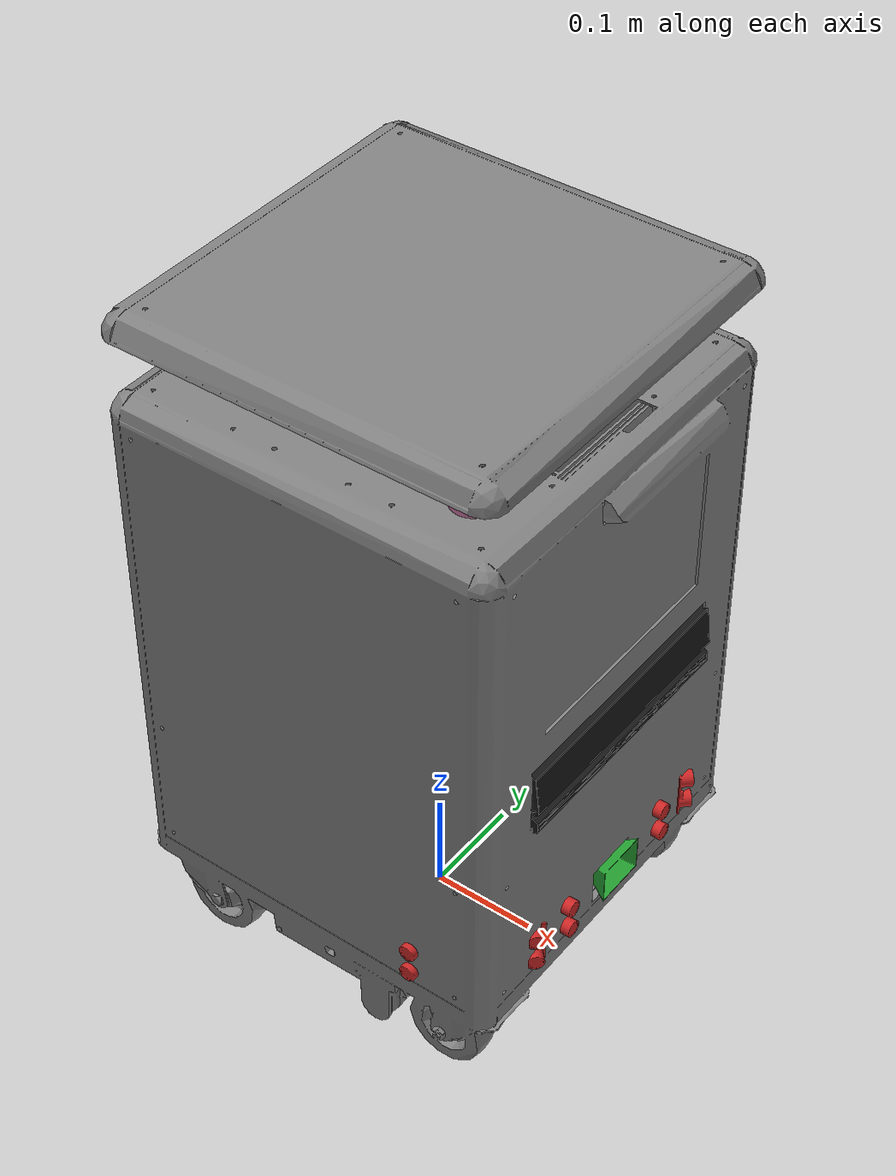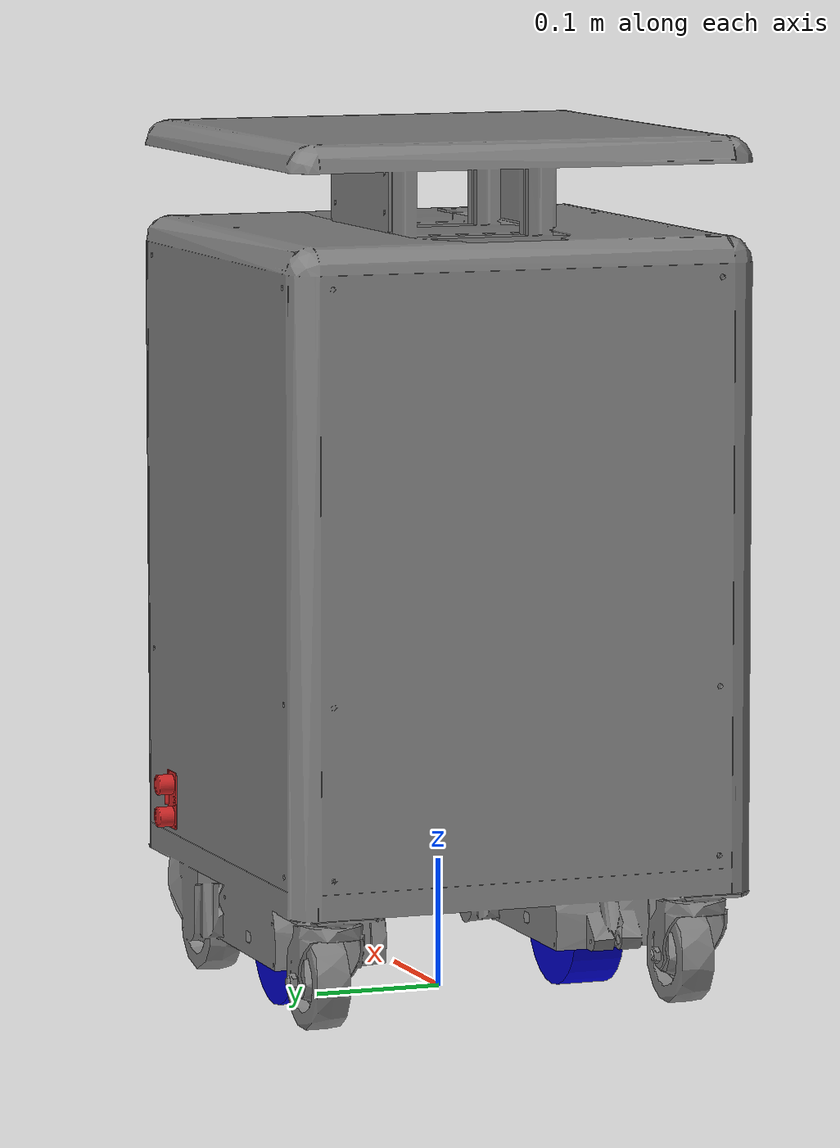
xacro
<?xml version="1.0"?>
<robot name="base" xmlns:xacro="http://www.ros.org/wiki/xacro">

		<xacro:include filename="$(find cuboid_description)/urdf/cuboid/cuboid_library.urdf.xacro" />

  <!--stack_hexagons parent="base_link"/-->
  <xacro:sensor_kinect  parent="base_link"/>
	<xacro:sensor_pmd name="pico_flexx" parent="base_link">
   <origin xyz="${pmd_px} ${pmd_py} ${pmd_pz}" rpy="${pmd_or} ${pmd_op} ${pmd_oy}"/>
  </xacro:sensor_pmd>
  <!--sensor_kinect  parent="fork_link"/-->
</robot>

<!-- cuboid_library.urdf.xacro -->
<!--
  The complete cuboid library of xacros for easy reference
 -->
<robot  xmlns:xacro="http://www.ros.org/wiki/xacro">
  <!-- General -->
  <xacro:include filename="$(find cuboid_description)/urdf/common_properties.urdf.xacro"/>
  <xacro:include filename="$(find cuboid_description)/urdf/cuboid/cuboid_properties.urdf.xacro"/>
  <!-- Sensors -->
  <xacro:include filename="$(find cuboid_description)/urdf/sensors/kinect.urdf.xacro"/>
  <xacro:include filename="$(find cuboid_description)/urdf/sensors/pico_flexx.urdf.xacro"/>
  <xacro:include filename="$(find cuboid_description)/urdf/sensors/hokuyo_lx30_laser.urdf.xacro" />
  <xacro:include filename="$(find cuboid_description)/urdf/sensors/rplidar.urdf.xacro" />
  <xacro:include filename="$(find cuboid_description)/urdf/sensors/hc-sr04.urdf.xacro" />
  <xacro:include filename="$(find cuboid_description)/urdf/sensors/gyro_imu.urdf.xacro" />
  <!-- Bases -->
  <xacro:include filename="$(find cuboid_description)/urdf/sensors/wheel.urdf.xacro"/>
  <xacro:include filename="$(find cuboid_description)/urdf/sensors/connecter.urdf.xacro" />
  <xacro:include filename="$(find cuboid_description)/urdf/cuboid/cuboid_base.urdf.xacro"/>

</robot>

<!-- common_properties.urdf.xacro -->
<!--
  Various useful properties such as constants and materials
 -->
<robot xmlns:xacro="http://www.ros.org/wiki/xacro">
  <xacro:property name="M_PI" value="3.1415926535897931" />
  <xacro:macro name="material_white">
    <material name="white">
      <color rgba="1 1 1 1"/>
    </material>
  </xacro:macro>
  <xacro:macro name="material_grey">
    <material name="grey">
      <color rgba="0.5 0.5 0.5 1"/>
    </material>
  </xacro:macro>
  <xacro:macro name="material_light_grey">
    <material name="light_grey">
      <color rgba="0.6 0.6 0.6 1"/>
    </material>
  </xacro:macro>
  <xacro:macro name="material_dark_grey">
    <material name="dark_grey">
      <color rgba="0.3 0.3 0.3 1"/>
    </material>
  </xacro:macro>
  <xacro:macro name="material_black">
    <material name="black">
      <color rgba="0.1 0.1 0.1 1"/>
    </material>
  </xacro:macro>
  <xacro:macro name="material_red">
    <material name="red">
      <color rgba="1 0 0 1"/>
    </material>
  </xacro:macro>
  <xacro:macro name="material_green">
    <material name="green">
      <color rgba="0.0 0.8 0.0 1"/>
    </material>
  </xacro:macro>
  <xacro:macro name="material_blue">
    <material name="blue">
      <color rgba="0.0 0.0 1.0 1"/>
    </material>
  </xacro:macro>
  <xacro:macro name="material_grey_blue">
    <material name="grey_blue">
      <color rgba="0.4 0.4 1.0 1"/>
    </material>
  </xacro:macro>
  <xacro:macro name="material_orange">
    <material name="orange">
      <color rgba="1.0 0.7 0.0 1"/>
    </material>
  </xacro:macro>
</robot>

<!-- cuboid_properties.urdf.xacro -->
<robot xmlns:xacro="http://www.ros.org/wiki/xacro">
  <!--
    These properties must be observed by any machine
    that wants to be defined as a turtlebot. Refer
    to the REP for more details.

    http://www.ros.org/reps/rep-0119.html
   -->

<xacro:property name="cam_px" value="0.180" />
<xacro:property name="cam_pz" value="0.325" />
<xacro:property name="cam_or" value="0" />
<xacro:property name="cam_op" value="0" />
<xacro:property name="cam_oy" value="0" />
<xacro:property name="pmd_px" value="0.180" />
<xacro:property name="pmd_py" value="0" />
<xacro:property name="pmd_pz" value="0.553" />
<xacro:property name="pmd_or" value="0" />
<xacro:property name="pmd_op" value="1.047" />
<xacro:property name="pmd_oy" value="0" />
<xacro:property name="pi" value="3.1415926535897931" />
<xacro:property name="body_height" value="0.000" />
<xacro:property name="wheel_x_dist" value="0.00" />
<xacro:property name="wheel_y_dist" value="0.115" />
<xacro:property name="wheel_height" value="0.101" />
  <!-- simplified box collision geometry for AkuLidar laser -->
  <xacro:property name="base_laser_x" value="0.120" />
  <xacro:property name="base_laser_y" value="-0.120" />
  <xacro:property name="base_laser_z" value="0.605" />
  <!-- simplified box collision geometry for rplidar laser -->
  <xacro:property name="base_laser_size_x" value="0.06" />
  <xacro:property name="base_laser_size_y" value="0.06" />
  <xacro:property name="base_laser_size_z" value="0.03" />
  <xacro:property name="base_laser_collision_offset_z" value="0.023" />
  <!-- simplified box collision geometry for rplidar laser -->
  <xacro:property name="rp_laser_x" value="0.150" />
  <xacro:property name="rp_laser_y" value="0.0" />
  <xacro:property name="rp_laser_z" value="0.640" />
  <xacro:property name="foot_rp_laser_x" value="0.135" />
  <xacro:property name="foot_rp_laser_y" value="0.0" />
  <xacro:property name="foot_rp_laser_z" value="0.065" />

  <xacro:property name="front_sonar_x" value="0.180" />
  <xacro:property name="front_sonar_y" value="0.070" />
  <xacro:property name="front_sonar_z" value="0.140" />

  <xacro:property name="oblique_sonar_x" value="0.180" />
  <xacro:property name="oblique_sonar_y" value="0.110" />
  <xacro:property name="oblique_sonar_z" value="0.140" />

  <xacro:property name="side_sonar_x" value="0.110" />
  <xacro:property name="side_sonar_y" value="0.180" />
  <xacro:property name="side_sonar_z" value="0.140" />

  <xacro:property name="connector_x" value="0.170" />
  <xacro:property name="connector_z" value="0.140" />
</robot>

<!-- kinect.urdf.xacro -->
<robot xmlns:xacro="http://www.ros.org/wiki/xacro">
		<xacro:include filename="$(find cuboid_description)/urdf/sensors/kinect_gazebo.urdf.xacro"/>
  <!--xacro:include filename="$(find cuboid_description)/urdf/cuboid_properties.urdf.xacro"/-->

  <xacro:property name="kinect_cam_py" value="-0.0125"/>
  <!-- Parameterised in part by the values in cuboid_properties.urdf.xacro -->
  <xacro:macro name="sensor_kinect" params="parent">
    <joint name="camera_rgb_joint" type="fixed">
      <origin xyz="${cam_px} ${kinect_cam_py} ${cam_pz}" rpy="${cam_or} ${cam_op} ${cam_oy}"/>
      <parent link="${parent}"/>
      <child link="camera_rgb_frame" />
    </joint>
    <link name="camera_rgb_frame"/>

    <joint name="camera_rgb_optical_joint" type="fixed">
      <origin xyz="0 -0.1 0" rpy="${-M_PI/2} 0 ${-M_PI/2}" />
      <parent link="camera_rgb_frame" />
      <child link="camera_rgb_optical_frame" />
	</joint>
	<link name="camera_rgb_optical_frame"/>

    <joint name="camera_ir_optical_joint" type="fixed">
      <origin xyz="0 -0.04250 0" rpy="${-M_PI/2} 0 ${-M_PI/2}" />
      <parent link="camera_rgb_frame" />
      <child link="camera_ir_optical_frame" />
	</joint>
   	<link name="camera_ir_optical_frame"/>

	<joint name="camera_joint" type="fixed">
      <origin xyz="-0.031 ${-kinect_cam_py} -0.016" rpy="0 0 0"/>
      <parent link="camera_rgb_frame"/>
      <child link="camera_link"/>
    </joint>
      <link name="camera_link">
      <visual>
       <origin xyz="0 0 -0.02" rpy="0 0 0"/>
        <geometry>
         <mesh filename="package://cuboid_description/meshes/sensors/kinect_v2.stl"/>
         <!--mesh filename="package://cuboid_description/meshes/sensors/orrbec.stl"/-->
        </geometry>
      <xacro:material_black/>
      </visual>
  	  <collision>
        <origin xyz="0.0 0.0 -0.02" rpy="0 0 0"/>
  	    <geometry>
  	      <!--box size="0.07271 0.27794 0.073"/-->
         <mesh filename="package://cuboid_description/meshes/sensors/kinect_v2.stl"/>
         <!--mesh filename="package://cuboid_description/meshes/sensors/orrbec.stl"/-->
  	    </geometry>
  	  </collision>
      <inertial>
        <mass value="0.564" />
        <origin xyz="0 0 0" />
        <inertia ixx="0.003881243" ixy="0.0" ixz="0.0"
                 iyy="0.000498940" iyz="0.0"
                 izz="0.003879257" />
      </inertial>
    </link>

	<joint name="camera_depth_joint" type="fixed">
	  <origin xyz="0 ${2 * -kinect_cam_py} 0" rpy="0 0 0" />
	  <parent link="camera_rgb_frame" />
	  <child link="camera_depth_frame" />
	</joint>
	<link name="camera_depth_frame"/>

	<joint name="camera_depth_optical_joint" type="fixed">
	  <origin xyz="0 0 0" rpy="${-M_PI/2} 0 ${-M_PI/2}" />
	  <parent link="camera_depth_frame" />
	  <child link="camera_depth_optical_frame" />
	</joint>
	<link name="camera_depth_optical_frame"/>

	<!-- Kinect sensor for simulation -->
	<cuboid_sim_3dsensor/>
  </xacro:macro>
</robot>

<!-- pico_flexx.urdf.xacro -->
<robot xmlns:xacro="http://www.ros.org/wiki/xacro">
		<xacro:include filename="$(find cuboid_description)/urdf/sensors/pico_flexx_gazebo.urdf.xacro"/>
  <!--xacro:include filename="$(find cuboid_description)/urdf/cuboid_properties.urdf.xacro"/-->
<xacro:macro name="sensor_pmd" params="name parent *origin">
<link name="${name}_link_optical_frame" />
<link name="${name}_optical_frame" />
 <link name="${name}_depth_link"/>
 <link name="${name}_link">
   <visual>
    <geometry>
      <box size="0.007 0.066 0.016"/>
    </geometry>
    <material name="green"/>
   </visual>
   <collision>
    <geometry>
      <box size="0.007 0.066 0.016"/>
    </geometry>
   </collision>
   <inertial>
      <origin xyz="0 0 0" rpy="0 0 0"/>
      <mass value="1"/>
      <inertia
        ixx="1.0" ixy="0.0" ixz="0.0"
        iyy="1.0" iyz="0.0"
        izz="1.0"/>
   </inertial>
 </link>

 <joint name="${name}_base_joint" type="fixed">
   <xacro:insert_block name="origin" />
   <parent link="${parent}"/>
   <child link="${name}_link_optical_frame"/>
 </joint>

 <joint name="${name}_depth_joint" type="fixed">
   <origin xyz="0 0 0" rpy="${-M_PI/2} 0 ${-M_PI/2}" />
   <parent link="${name}_link_optical_frame" />
   <child link="${name}_depth_link" />
 </joint>

  <joint name="${name}_joint" type="fixed">
    <origin xyz="0 0 0" rpy="0 0 0"/>
    <parent link="${name}_link_optical_frame"/>
    <child link="${name}_link"/>
  </joint>

  <joint name="${name}_optical_joint" type="fixed">
    <origin xyz="0 0 0" rpy="${M_PI/2} 0 ${M_PI/2}"/>
    <parent link="${name}_link_optical_frame"/>
    <child link="${name}_optical_frame"/>
  </joint>
	<xacro:cuboid_sim_pmd_sensor name="${name}"/>
  </xacro:macro>
</robot>

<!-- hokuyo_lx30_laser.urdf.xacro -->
<robot xmlns:sensor="http://playerstage.sourceforge.net/gazebo/xmlschema/#sensor"
       xmlns:controller="http://playerstage.sourceforge.net/gazebo/xmlschema/#controller"
       xmlns:interface="http://playerstage.sourceforge.net/gazebo/xmlschema/#interface"
       xmlns:xacro="http://www.ros.org/wiki/xacro">

  <xacro:include filename="$(find cuboid_description)/urdf/sensors/hokuyo_lx30_laser.gazebo.xacro" />

  <xacro:macro name="hokuyo_lx30_laser_v0" params="name parent *origin ros_topic update_rate min_angle max_angle">
    <joint name="${name}_joint" type="fixed">
      <axis xyz="0 1 0" />
      <xacro:insert_block name="origin" />
      <parent link="${parent}_link"/>
      <child link="${name}_link"/>
    </joint>
    <link name="${name}_link" type="laser">
      <inertial>
        <mass value="0.001" />
        <origin xyz="0 0 0" rpy="0 0 0" />
        <inertia ixx="0.0001" ixy="0" ixz="0" iyy="0.000001" iyz="0" izz="0.0001" />
      </inertial>
    <visual>
      <origin xyz="0 0 0" rpy="0 0 0" />
      <geometry>
        <cylinder radius="0.019" length="0.030" />
      </geometry>
    </visual>
    <collision>
      <origin xyz="0 0 0" rpy="0 0 0" />
      <geometry>
        <cylinder radius="0.019" length="0.040" />
      </geometry>
    </collision>
    </link>
    <!-- gazebo extensions -->
    <xacro:hokuyo_lx30_laser_gazebo_v0 name="${name}" ros_topic="${ros_topic}" update_rate="${update_rate}" min_angle="${min_angle}" max_angle="${max_angle}" />
  </xacro:macro>
</robot>

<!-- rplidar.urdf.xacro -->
<robot xmlns:sensor="http://playerstage.sourceforge.net/gazebo/xmlschema/#sensor"
       xmlns:controller="http://playerstage.sourceforge.net/gazebo/xmlschema/#controller"
       xmlns:interface="http://playerstage.sourceforge.net/gazebo/xmlschema/#interface"
       xmlns:xacro="http://www.ros.org/wiki/xacro">

  <xacro:include filename="$(find cuboid_description)/urdf/sensors/rplidar.gazebo.xacro" />

  <xacro:macro name="rplidar_laser" params="name parent *origin ros_topic update_rate min_angle max_angle">
<!-- RPLidar 2D LIDAR -->
   <joint name="${name}_joint" type="fixed">
      <axis xyz="0 1 0" />
      <xacro:insert_block name="origin" />
      <parent link="${parent}_link" />
      <child link="${name}_link" />
   </joint>
   <link name="${name}_link">
     <visual>
      <geometry>
       <cylinder radius="0.019" length="0.030" />
      </geometry>
      <material name="Red" />
     </visual>
     <collision>
       <origin xyz="0 0 0" rpy="0 0 0" />
       <geometry>
        <cylinder radius="0.019" length="0.040" />
       </geometry>
     </collision>
	 <inertial>
		<mass value="0.000001" />
		<origin xyz="0 0 0" />
	    <inertia ixx="0.0001" ixy="0.0" ixz="0.0"
			iyy="0.0001" iyz="0.0"
			izz="0.0001" />
	    </inertial>
  </link>

   		<!-- Set up laser gazebo details -->
    <xacro:rplidar_laser_gazebo name="${name}" ros_topic="${ros_topic}" update_rate="${update_rate}" min_angle="${min_angle}" max_angle="${max_angle}" />
   </xacro:macro>
</robot>

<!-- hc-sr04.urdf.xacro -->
<robot xmlns:xacro="http://www.ros.org/wiki/xacro">
  <xacro:include filename="$(find cuboid_description)/urdf/sensors/hc-sr04_gazebo.urdf.xacro"/>

  <xacro:macro name="sonar" params="name parent *origin ros_topic update_rate minRange maxRange fov ray_count">
<!-- hc-sr04 1D sonar -->
   <joint name="${name}_joint" type="fixed">
      <axis xyz="0 0 0" />
      <xacro:insert_block name="origin" />
      <parent link="${parent}_link" />
      <child link="${name}_frame" />
   </joint>
   <joint name="${name}_reciever_joint" type="fixed">
					 <origin xyz="0.01 0 0.015" rpy="0 0 0"/>
      <parent link="${name}_frame" />
      <child link="${name}_reciever_frame" />
   </joint>
   <link name="${name}_frame">
     <visual>
			 <origin xyz="0 0 0" rpy="${M_PI/2} 0 ${M_PI/2}" />
      <geometry>
         <mesh filename="package://cuboid_description/meshes/sensors/hc-sr04.stl"/>
      </geometry>
      <material name="Red" />
     </visual>
     <collision>
		<origin xyz="0 0 0" rpy="${M_PI/2} 0 ${M_PI/2}" />
       <geometry>
         <mesh filename="package://cuboid_description/meshes/sensors/hc-sr04.stl"/>
       </geometry>
     </collision>
	 <inertial>
		<mass value="0.000001" />
		<origin xyz="0 0 0" />
	    <inertia ixx="0.0001" ixy="0.0" ixz="0.0"
			iyy="0.0001" iyz="0.0"
			izz="0.0001" />
	    </inertial>
  </link>
	<link name="${name}_reciever_frame"/>

   		<!-- Set up laser gazebo details -->
		<xacro:sonar_gazebo name="${name}" ros_topic="${ros_topic}" update_rate="${update_rate}" maxRange="${maxRange}" minRange="${minRange}" fov="${fov}" ray_count="${ray_count}"/>

</xacro:macro>
</robot>

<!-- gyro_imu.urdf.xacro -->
<robot xmlns:sensor="http://playerstage.sourceforge.net/gazebo/xmlschema/#sensor"
       xmlns:controller="http://playerstage.sourceforge.net/gazebo/xmlschema/#controller"
       xmlns:interface="http://playerstage.sourceforge.net/gazebo/xmlschema/#interface"
       xmlns:xacro="http://www.ros.org/wiki/xacro">

  <xacro:include filename="$(find cuboid_description)/urdf/sensors/gyro_imu.gazebo.xacro" />

  <xacro:macro name="gyro_imu" params="name parent update_rate ">
    <joint name="${name}_joint" type="fixed">
      <axis xyz="0 1 0" />
      <parent link="${parent}_link"/>
      <child link="${name}_link"/>
    </joint>
    <link name="${name}_link">
      <inertial>
        <mass value="0.001" />
        <origin xyz="0 0 0" rpy="0 0 0" />
        <inertia ixx="0.0001" ixy="0" ixz="0" iyy="0.000001" iyz="0" izz="0.0001" />
      </inertial>
    </link>
    <!-- gazebo extensions -->
    <xacro:gyro_imu_gazebo name="${name}"  update_rate="${update_rate}" />
  </xacro:macro>
</robot>

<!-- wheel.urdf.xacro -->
<robot xmlns:xacro="http://www.ros.org/wiki/xacro">
  <xacro:include filename="$(find cuboid_description)/urdf/sensors/wheel_gazebo.urdf.xacro" />
  <xacro:macro name="wheel" params="parent name radius *origin">
  <xacro:property name="M_PI" value="3.1415926535897931" />
  <joint name="wheel_${name}_joint" type="continuous">
      <parent link="${parent}" />
      <child link="wheel_${name}" />
    <xacro:insert_block name="origin" />
    <axis xyz="0 1 0" />
    <limit effort="20" velocity="20.0" />
    <dynamics damping="0.5" friction="0.1" />
  </joint>
  <transmission name="wheel_${name}_transmission">
    <type>transmission_interface/SimpleTransmission</type>
    <joint name="wheel_${name}_joint">
        <hardwareInterface>hardware_interface/VelocityJointInterface</hardwareInterface>
    </joint>
    <actuator name="wheel_${name}_motor">
        <hardwareInterface>hardware_interface/VelocityJointInterface</hardwareInterface>
      <mechanismReduction>1</mechanismReduction>
    </actuator>
  </transmission>

  <link name="wheel_${name}">
    <visual>
      <origin xyz="0 0 0" rpy="${M_PI / 2} 0 0" />
      <geometry>
        <cylinder radius="${radius}" length="0.041" />
      </geometry>
      <material name="blue">
        <color rgba="0 0 0.8 1" />
      </material>
    </visual>
    <collision>
      <origin xyz="0 0 0" rpy="${M_PI / 2} 0 0" />
      <geometry>
        <cylinder radius="${radius}" length="0.041" />
      </geometry>
    </collision>
    <inertial>
      <mass value="1" />
      <origin xyz="0 0 0" />
      <inertia ixx="1.0" ixy="0.0" ixz="0.0"
                         iyy="1.0" iyz="0.0"
                                   izz="1.0" />
    </inertial>
  </link>

  <xacro:wheel_gazebo name="${name}" />
  </xacro:macro>
</robot>

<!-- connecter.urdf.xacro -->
<robot xmlns:sensor="http://playerstage.sourceforge.net/gazebo/xmlschema/#sensor"
       xmlns:controller="http://playerstage.sourceforge.net/gazebo/xmlschema/#controller"
       xmlns:interface="http://playerstage.sourceforge.net/gazebo/xmlschema/#interface"
	   xmlns:xacro="http://www.ros.org/wiki/xacro">

<xacro:macro name="power_connector" params="name parent *origin">
<link name="${name}_link" >
   <visual>
    <geometry>
         <mesh filename="package://cuboid_description/meshes/sensors/connector.dae"/>
    </geometry>
    <material name="green"/>
   </visual>
   <collision>
    <geometry>
         <mesh filename="package://cuboid_description/meshes/sensors/connector.stl"/>
    </geometry>
   </collision>
   <inertial>
      <origin xyz="0 0 0" rpy="0 0 0"/>
      <mass value="1"/>
      <inertia
        ixx="1.0" ixy="0.0" ixz="0.0"
        iyy="1.0" iyz="0.0"
        izz="1.0"/>
   </inertial>
 </link>

 <joint name="${name}_joint" type="fixed">
   <parent link="${parent}_link"/>
   <child link="${name}_link"/>
   <xacro:insert_block name="origin" />
 </joint>

 <gazebo reference="link2">
    <mu1>0.2</mu1>
    <mu2>0.2</mu2>
    <material>Gazebo/Black</material>
  </gazebo>

  </xacro:macro>
</robot>

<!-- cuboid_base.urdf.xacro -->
<robot xmlns:xacro="http://www.ros.org/wiki/xacro">
  <xacro:macro name="default_inertial" params="mass origin_xyz">
    <inertial>
      <mass value="${mass}" />
      <origin xyz="${origin_xyz}" />
      <inertia ixx="1.0" ixy="0.0" ixz="0.0"
                         iyy="1.0" iyz="0.0"
                                   izz="1.0" />
    </inertial>
  </xacro:macro>

  <link name="base_footprint"/>
  <joint name="footprint_to_base" type="fixed">
    <parent link="base_footprint" />
    <child link="base_link">base_link</child>
    <origin xyz="0 0 ${body_height}" rpy="0 0 0" />
  </joint>

  <link name="base_link">
    <xacro:default_inertial mass="50" origin_xyz="0 0 0" />
  </link>

  <joint name="base_to_box" type="fixed">
    <parent link="base_link" />
    <child link="box_link">box_link</child>
    <origin xyz="0 0 0" rpy="0 0 0" />
  </joint>

  <link name="box_link">
    <visual>
    <origin xyz="0 0 0.0" rpy="0 0 ${M_PI}" />
      <geometry>
        <!--box size="0.37 0.37 0.37" /-->
     <mesh filename="package://cuboid_description/meshes/cuboid_dock.dae" />
      </geometry>
      <xacro:material_grey/>
      </visual>
    <collision>
    <origin xyz="0 0 0.0" rpy="0 0 ${M_PI}" />
      <geometry>
        <!--box size="0.37 0.37 0.37" /-->
    <mesh filename="package://cuboid_description/meshes/cuboid_dock.stl" />
      </geometry>
    </collision>
  </link>
  <!-- wheel -->
  <xacro:wheel name="left" parent="base_link" radius="${wheel_height / 2}" >
         <origin xyz="${wheel_x_dist} ${wheel_y_dist} ${wheel_height /2 - 0.005}" rpy="0 0 0" />
  </xacro:wheel>
  <xacro:wheel name="right" parent="base_link" radius="${wheel_height / 2}" >
         <origin xyz="${wheel_x_dist} ${- wheel_y_dist} ${wheel_height /2 - 0.005}" rpy="0 0 0" />
  </xacro:wheel>
  <!-- connector -->
  <xacro:power_connector name="power_connector" parent="box" >
		  <origin xyz="${connector_x} 0 ${connector_z}" rpy="0 0 0" />
  </xacro:power_connector>
  <!-- hokuyo lidar -->
  <xacro:hokuyo_lx30_laser_v0 name="cuboid_laser" parent="box" ros_topic="urg_scan" update_rate="20" min_angle="-2.356" max_angle="2.356" >
      <origin xyz="${base_laser_x} ${base_laser_y} ${base_laser_z}" rpy="0 0 ${-M_PI/4}" />
  </xacro:hokuyo_lx30_laser_v0>
  <!-- top lidar -->
	<xacro:rplidar_laser name="rplidar_laser" parent="box" ros_topic="scan_raw" update_rate="5.5" min_angle="-3.1415" max_angle="3.1415" >
			<origin xyz="${rp_laser_x} ${rp_laser_y} ${rp_laser_z}" rpy="0 ${-M_PI/4} ${M_PI}" />
    </xacro:rplidar_laser>
  <!-- foot lidar -->
	<xacro:rplidar_laser name="rplidar_laser_foot" parent="box" ros_topic="scan_raw_foot" update_rate="5.5" min_angle="-3.1415" max_angle="3.1415" >
			<origin xyz="${foot_rp_laser_x} ${foot_rp_laser_y} ${foot_rp_laser_z}" rpy="${M_PI} 0 ${M_PI}" />
    </xacro:rplidar_laser>
  <!-- imu -->
  <xacro:gyro_imu name="gyro" parent="base"  update_rate="50"/>

  <!-- sonars -->
  <!-- frame=id:/sonar_left_side_frame, topic:/sonar/left_side -->
  <xacro:sonar name="sonar_left_side" parent="box" ros_topic="/sonar/left_side" update_rate="5" maxRange="0.5" minRange="0.005" fov="0.3491" ray_count="5">
		  <origin xyz="${side_sonar_x} ${side_sonar_y} ${side_sonar_z}" rpy="0 0 ${M_PI/2.0}" />
  </xacro:sonar>
  <!-- frame=id:/sonar_left_oblique_frame, topic:/sonar/left_oblique -->
  <xacro:sonar name="sonar_left_oblique" parent="box" ros_topic="/sonar/left_oblique" update_rate="5" maxRange="0.5" minRange="0.005" fov="0.3491" ray_count="5">
		  <origin xyz="${oblique_sonar_x} ${oblique_sonar_y} ${oblique_sonar_z}" rpy="0 0 ${M_PI/4.0}" />
   </xacro:sonar>
  <!-- frame=id:/sonar_left_front_frame, topic:/sonar/left_front -->
  <xacro:sonar name="sonar_left_front" parent="box" ros_topic="/sonar/left_front" update_rate="5" maxRange="0.5" minRange="0.005" fov="0.3491" ray_count="5">
		  <origin xyz="${front_sonar_x} ${front_sonar_y} ${front_sonar_z}" rpy="0 0 0" />
   </xacro:sonar>

  <!-- frame=id:/sonar_right_front_frame, topic:/sonar/right_front -->
  <xacro:sonar name="sonar_right_front" parent="box" ros_topic="/sonar/right_front" update_rate="5" maxRange="0.5" minRange="0.005" fov="0.3491" ray_count="5">
      <origin xyz="${front_sonar_x} -${front_sonar_y} ${front_sonar_z}" rpy="0 0 0" />
   </xacro:sonar>
  <!-- frame=id:/sonar_right_oblique_frame, topic:/sonar/right_oblique -->
  <xacro:sonar name="sonar_right_oblique" parent="box" ros_topic="/sonar/right_oblique" update_rate="5" maxRange="0.5" minRange="0.005" fov="0.3491" ray_count="5">
      <origin xyz="${oblique_sonar_x} -${oblique_sonar_y} ${oblique_sonar_z}" rpy="0 0 -${M_PI/4.0}" />
  </xacro:sonar>
  <!-- frame=id:/sonar_right_side_frame, topic:/sonar/right_side -->
  <xacro:sonar name="sonar_right_side" parent="box" ros_topic="/sonar/right_side" update_rate="5" maxRange="0.5" minRange="0.005" fov="0.3491" ray_count="5">
      <origin xyz="${side_sonar_x} -${side_sonar_y} ${side_sonar_z}" rpy="0 0 -${M_PI/2.0}" />
  </xacro:sonar>

  <xacro:include filename="$(find cuboid_description)/urdf/cuboid_base.gazebo" />
</robot>
